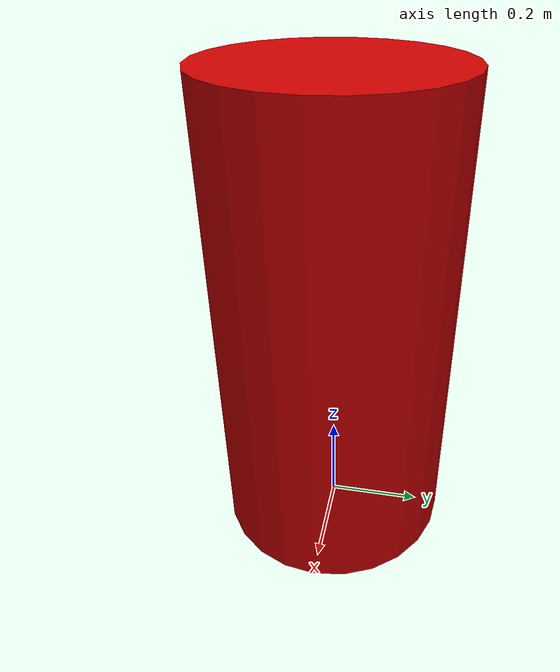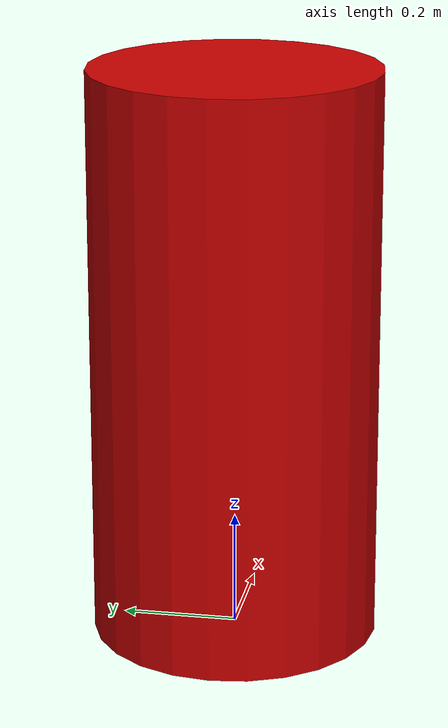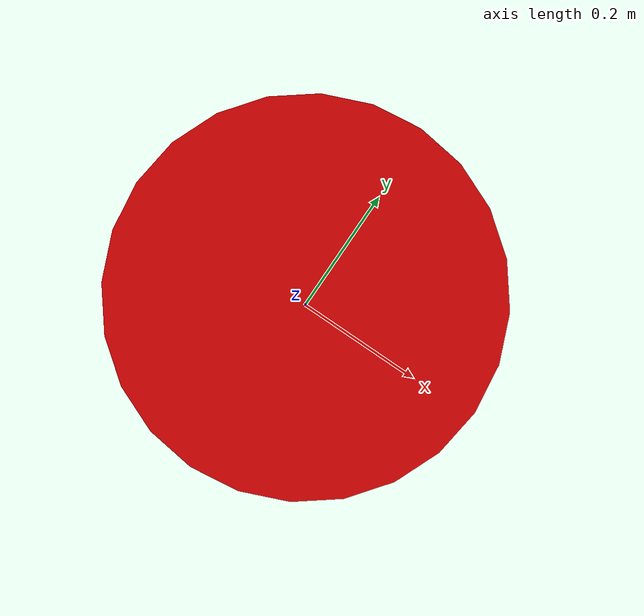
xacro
<?xml version="1.0"?>
<robot name="target" xmlns:xacro="http://ros.org/wiki/xacro" xmlns:drake="http://mit.edu">

  <!-- File Conventions
    - mass (kg)
    - length (m)
    - inertia (kgm^2)
    -
  -->

  <!-- TO DO
    - update dimensions
    -
  -->

  <!-- #region Xacro Definitions -->
  <xacro:property name="pi" value="3.141592653589793"/>
  <xacro:property name="zero_origin" value = "0.0 0.0 0.0"/>
  <xacro:property name="zero_rpy" value = "0.0 0.0 0.0"/>

  <xacro:property name="base_radius" value = "${0.5/2}"/>
  <xacro:property name="base_length" value = "1.0"/>
  <xacro:property name="base_origin" value = "0.0 0.0 ${base_length/2}"/>
  <xacro:property name="base_mass" value = "50.0"/>
  <xacro:property name="base_ixx" value = "${(base_mass*base_radius**2)/4 + (base_mass*base_length**2)/3}"/>
  <xacro:property name="base_iyy" value = "${(base_mass*base_radius**2)/4 + (base_mass*base_length**2)/3}"/>
  <xacro:property name="base_izz" value = "${(base_mass*base_radius**2)/2}"/>
  <xacro:property name="base_ixy" value = "0.0"/>
  <xacro:property name="base_ixz" value = "0.0"/>
  <xacro:property name="base_iyz" value = "0.0"/>
  <!-- #endregion -->

  <!-- #region Material Definitions -->
  <material name="gray">
    <color rgba="0.5 0.5 0.5 1.0"/>
  </material>
  <material name="red">
    <color rgba="0.8 0.0 0.0 1.0"/>
  </material>
  <material name="green">
    <color rgba="0.0 0.8 0.0 1.0"/>
  </material>
  <material name="blue">
    <color rgba="0.0 0.0 0.8 1.0"/>
  </material>
  <!-- #endregion -->

  <!-- #region Target Base -->
  <link name="target_base">
    <inertial>
      <origin xyz="${base_origin}" rpy="${zero_rpy}"/>
      <mass value="${base_mass}"/>
      <inertia ixx="${base_ixx}" ixy="${base_ixy}" ixz="${base_ixz}" iyy="${base_iyy}" iyz="${base_iyz}" izz="${base_izz}"/>
    </inertial>
    <visual>
      <origin xyz="${base_origin}" rpy="${zero_rpy}"/>
      <geometry>
        <cylinder radius="${base_radius}" length="${base_length}"/>
      </geometry>
      <material name="red"/>
    </visual>
    <collision>
      <origin xyz="${base_origin}" rpy="${zero_rpy}"/>
      <geometry>
        <cylinder radius="${base_radius}" length="${base_length}"/>
      </geometry>
    </collision>
  </link>
  <!-- #endregion -->

  <!-- #region Drake Commands -->
  <drake:collision_filter_group name="self_collision_ignore">
    <drake:member link="target_base"/>
    <drake:ignored_collision_filter_group name="self_collision_ignore"/>
  </drake:collision_filter_group>
  <!-- #endregion -->

</robot>
